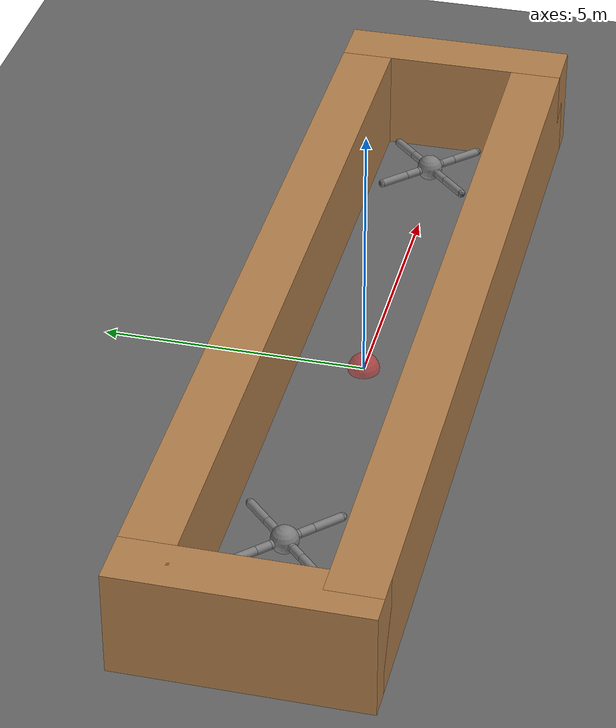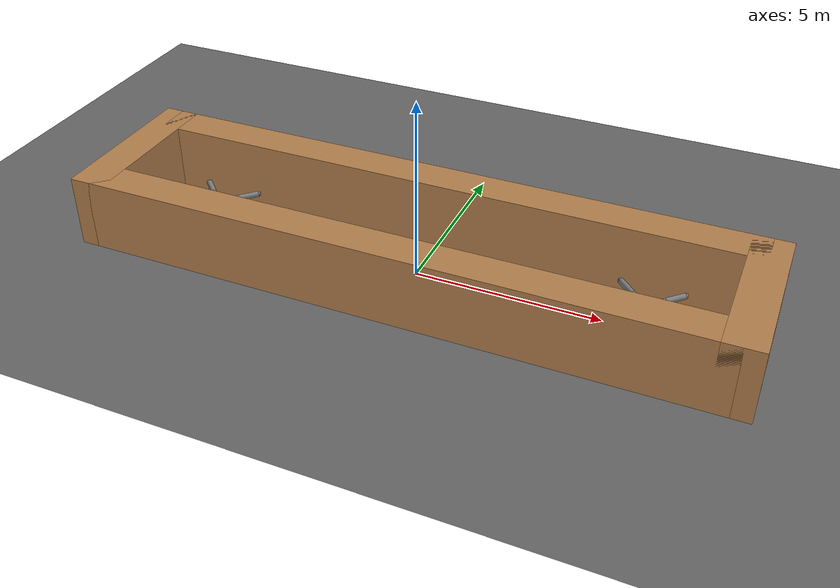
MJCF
<mujoco model="ant_pair_corridor">
  <compiler angle="degree" coordinate="local" inertiafromgeom="true"/>
  <option timestep="0.01" iterations="4" />
  <custom>
    <!-- brax custom params -->
    <!-- init_qpos: ant_a (15) + ant_b (15) + target_a (2) + target_b (2) = 34 -->
    <!-- Ant A starts at left end (-6, 0), Ant B starts at right end (6, 0) -->
    <!-- Target A is at right end (6, 0), Target B is at left end (-6, 0) -->
    <numeric data="-6.0 0.0 0.55 1.0 0.0 0.0 0.0 0.0 1.0 0.0 -1.0 0.0 -1.0 0.0 1.0 6.0 0.0 0.55 1.0 0.0 0.0 0.0 0.0 1.0 0.0 -1.0 0.0 -1.0 0.0 1.0 6.0 0.0 -6.0 0.0" name="init_qpos"/>
    <numeric data="1000" name="constraint_limit_stiffness"/>
    <numeric data="4000" name="constraint_stiffness"/>
    <numeric data="10" name="constraint_ang_damping"/>
    <numeric data="20" name="constraint_vel_damping"/>
    <numeric data="0.5" name="joint_scale_pos"/>
    <numeric data="0.2" name="joint_scale_ang"/>
    <numeric data="0.0" name="ang_damping"/>
    <numeric data="1" name="spring_mass_scale"/>
    <numeric data="1" name="spring_inertia_scale"/>
    <numeric data="15" name="solver_maxls"/>
  </custom>
  <default>
    <joint armature="1" damping="1" limited="true"/>
    <!-- NOTE: default contype=1, conaffinity=1 so ant bodies COLLIDE with each other -->
    <geom contype="1" conaffinity="1" condim="3" density="5.0" friction="1 0.5 0.5"/>
  </default>
  <asset>
    <texture builtin="gradient" height="100" rgb1="1 1 1" rgb2="0 0 0" type="skybox" width="100"/>
    <texture builtin="flat" height="1278" mark="cross" markrgb="1 1 1" name="texgeom" random="0.01" rgb1="0.8 0.6 0.4" rgb2="0.8 0.6 0.4" type="cube" width="127"/>
    <texture builtin="checker" height="100" name="texplane" rgb1="0 0 0" rgb2="0.8 0.8 0.8" type="2d" width="100"/>
    <material name="MatPlane" reflectance="0.5" shininess="1" specular="1" texrepeat="60 60" texture="texplane"/>
    <material name="geom" texture="texgeom" texuniform="true"/>
  </asset>
  <worldbody>
    <light cutoff="100" diffuse="1 1 1" dir="-0 0 -1.3" directional="true" exponent="1" pos="0 0 1.3" specular=".1 .1 .1"/>
    <geom conaffinity="1" condim="3" material="MatPlane" name="floor" pos="0 0 0" size="40 40 40" type="plane"/>

    <!-- Static top-down camera centered on corridor -->
    <camera name="track" mode="fixed" pos="0 0 14" xyaxes="1 0 0 0 1 0"/>

    <!-- ===== Corridor Walls ===== -->
    <!-- Long corridor along X axis: from x=-8 to x=8, width=2.5 (y from -1.25 to 1.25) -->
    <!-- North wall -->
    <geom name="wall_north" type="box" pos="0 1.75 1.0" size="8.5 0.5 1.0"
          contype="1" conaffinity="1" rgba="0.7 0.5 0.3 1.0" material=""/>
    <!-- South wall -->
    <geom name="wall_south" type="box" pos="0 -1.75 1.0" size="8.5 0.5 1.0"
          contype="1" conaffinity="1" rgba="0.7 0.5 0.3 1.0" material=""/>
    <!-- West cap -->
    <geom name="wall_west" type="box" pos="-8.5 0 1.0" size="0.5 2.25 1.0"
          contype="1" conaffinity="1" rgba="0.7 0.5 0.3 1.0" material=""/>
    <!-- East cap -->
    <geom name="wall_east" type="box" pos="8.5 0 1.0" size="0.5 2.25 1.0"
          contype="1" conaffinity="1" rgba="0.7 0.5 0.3 1.0" material=""/>

    <!-- ===== Ant A (starts at left end) ===== -->
    <body name="torso_a" pos="-6 0 0.75">
      <camera name="agent_a" mode="trackcom" pos="0 0 6" xyaxes="1 0 0 0 1 0"/>
      <geom name="a_torso_geom" pos="0 0 0" size="0.25" type="sphere"/>
      <joint armature="0" damping="0" limited="false" margin="0.01" name="a_root" pos="0 0 0" type="free"/>
      <body name="a_front_left_leg" pos="0 0 0">
        <geom fromto="0.0 0.0 0.0 0.2 0.2 0.0" name="a_aux_1_geom" size="0.08" type="capsule"/>
        <body name="a_aux_1" pos="0.2 0.2 0">
          <joint axis="0 0 1" name="a_hip_1" pos="0.0 0.0 0.0" range="-30 30" type="hinge"/>
          <geom fromto="0.0 0.0 0.0 0.2 0.2 0.0" name="a_left_leg_geom" size="0.08" type="capsule"/>
          <body pos="0.2 0.2 0">
            <joint axis="-1 1 0" name="a_ankle_1" pos="0.0 0.0 0.0" range="30 70" type="hinge"/>
            <geom fromto="0.0 0.0 0.0 0.4 0.4 0.0" name="a_left_ankle_geom" size="0.08" type="capsule"/>
            <geom name="a_left_foot_geom" pos="0.4 0.4 0" size="0.08" type="sphere" mass="0"/>
          </body>
        </body>
      </body>
      <body name="a_front_right_leg" pos="0 0 0">
        <geom fromto="0.0 0.0 0.0 -0.2 0.2 0.0" name="a_aux_2_geom" size="0.08" type="capsule"/>
        <body name="a_aux_2" pos="-0.2 0.2 0">
          <joint axis="0 0 1" name="a_hip_2" pos="0.0 0.0 0.0" range="-30 30" type="hinge"/>
          <geom fromto="0.0 0.0 0.0 -0.2 0.2 0.0" name="a_right_leg_geom" size="0.08" type="capsule"/>
          <body pos="-0.2 0.2 0">
            <joint axis="1 1 0" name="a_ankle_2" pos="0.0 0.0 0.0" range="-70 -30" type="hinge"/>
            <geom fromto="0.0 0.0 0.0 -0.4 0.4 0.0" name="a_right_ankle_geom" size="0.08" type="capsule"/>
            <geom name="a_right_foot_geom" pos="-0.4 0.4 0" size="0.08" type="sphere" mass="0"/>
          </body>
        </body>
      </body>
      <body name="a_back_leg" pos="0 0 0">
        <geom fromto="0.0 0.0 0.0 -0.2 -0.2 0.0" name="a_aux_3_geom" size="0.08" type="capsule"/>
        <body name="a_aux_3" pos="-0.2 -0.2 0">
          <joint axis="0 0 1" name="a_hip_3" pos="0.0 0.0 0.0" range="-30 30" type="hinge"/>
          <geom fromto="0.0 0.0 0.0 -0.2 -0.2 0.0" name="a_back_leg_geom" size="0.08" type="capsule"/>
          <body pos="-0.2 -0.2 0">
            <joint axis="-1 1 0" name="a_ankle_3" pos="0.0 0.0 0.0" range="-70 -30" type="hinge"/>
            <geom fromto="0.0 0.0 0.0 -0.4 -0.4 0.0" name="a_third_ankle_geom" size="0.08" type="capsule"/>
            <geom name="a_third_foot_geom" pos="-0.4 -0.4 0" size="0.08" type="sphere" mass="0"/>
          </body>
        </body>
      </body>
      <body name="a_right_back_leg" pos="0 0 0">
        <geom fromto="0.0 0.0 0.0 0.2 -0.2 0.0" name="a_aux_4_geom" size="0.08" type="capsule"/>
        <body name="a_aux_4" pos="0.2 -0.2 0">
          <joint axis="0 0 1" name="a_hip_4" pos="0.0 0.0 0.0" range="-30 30" type="hinge"/>
          <geom fromto="0.0 0.0 0.0 0.2 -0.2 0.0" name="a_rightback_leg_geom" size="0.08" type="capsule"/>
          <body pos="0.2 -0.2 0">
            <joint axis="1 1 0" name="a_ankle_4" pos="0.0 0.0 0.0" range="30 70" type="hinge"/>
            <geom fromto="0.0 0.0 0.0 0.4 -0.4 0.0" name="a_fourth_ankle_geom" size="0.08" type="capsule"/>
            <geom name="a_fourth_foot_geom" pos="0.4 -0.4 0" size="0.08" type="sphere" mass="0"/>
          </body>
        </body>
      </body>
    </body>

    <!-- ===== Ant B (starts at right end) ===== -->
    <body name="torso_b" pos="6 0 0.75">
      <camera name="agent_b" mode="trackcom" pos="0 0 6" xyaxes="1 0 0 0 1 0"/>
      <geom name="b_torso_geom" pos="0 0 0" size="0.25" type="sphere"/>
      <joint armature="0" damping="0" limited="false" margin="0.01" name="b_root" pos="0 0 0" type="free"/>
      <body name="b_front_left_leg" pos="0 0 0">
        <geom fromto="0.0 0.0 0.0 0.2 0.2 0.0" name="b_aux_1_geom" size="0.08" type="capsule"/>
        <body name="b_aux_1" pos="0.2 0.2 0">
          <joint axis="0 0 1" name="b_hip_1" pos="0.0 0.0 0.0" range="-30 30" type="hinge"/>
          <geom fromto="0.0 0.0 0.0 0.2 0.2 0.0" name="b_left_leg_geom" size="0.08" type="capsule"/>
          <body pos="0.2 0.2 0">
            <joint axis="-1 1 0" name="b_ankle_1" pos="0.0 0.0 0.0" range="30 70" type="hinge"/>
            <geom fromto="0.0 0.0 0.0 0.4 0.4 0.0" name="b_left_ankle_geom" size="0.08" type="capsule"/>
            <geom name="b_left_foot_geom" pos="0.4 0.4 0" size="0.08" type="sphere" mass="0"/>
          </body>
        </body>
      </body>
      <body name="b_front_right_leg" pos="0 0 0">
        <geom fromto="0.0 0.0 0.0 -0.2 0.2 0.0" name="b_aux_2_geom" size="0.08" type="capsule"/>
        <body name="b_aux_2" pos="-0.2 0.2 0">
          <joint axis="0 0 1" name="b_hip_2" pos="0.0 0.0 0.0" range="-30 30" type="hinge"/>
          <geom fromto="0.0 0.0 0.0 -0.2 0.2 0.0" name="b_right_leg_geom" size="0.08" type="capsule"/>
          <body pos="-0.2 0.2 0">
            <joint axis="1 1 0" name="b_ankle_2" pos="0.0 0.0 0.0" range="-70 -30" type="hinge"/>
            <geom fromto="0.0 0.0 0.0 -0.4 0.4 0.0" name="b_right_ankle_geom" size="0.08" type="capsule"/>
            <geom name="b_right_foot_geom" pos="-0.4 0.4 0" size="0.08" type="sphere" mass="0"/>
          </body>
        </body>
      </body>
      <body name="b_back_leg" pos="0 0 0">
        <geom fromto="0.0 0.0 0.0 -0.2 -0.2 0.0" name="b_aux_3_geom" size="0.08" type="capsule"/>
        <body name="b_aux_3" pos="-0.2 -0.2 0">
          <joint axis="0 0 1" name="b_hip_3" pos="0.0 0.0 0.0" range="-30 30" type="hinge"/>
          <geom fromto="0.0 0.0 0.0 -0.2 -0.2 0.0" name="b_back_leg_geom" size="0.08" type="capsule"/>
          <body pos="-0.2 -0.2 0">
            <joint axis="-1 1 0" name="b_ankle_3" pos="0.0 0.0 0.0" range="-70 -30" type="hinge"/>
            <geom fromto="0.0 0.0 0.0 -0.4 -0.4 0.0" name="b_third_ankle_geom" size="0.08" type="capsule"/>
            <geom name="b_third_foot_geom" pos="-0.4 -0.4 0" size="0.08" type="sphere" mass="0"/>
          </body>
        </body>
      </body>
      <body name="b_right_back_leg" pos="0 0 0">
        <geom fromto="0.0 0.0 0.0 0.2 -0.2 0.0" name="b_aux_4_geom" size="0.08" type="capsule"/>
        <body name="b_aux_4" pos="0.2 -0.2 0">
          <joint axis="0 0 1" name="b_hip_4" pos="0.0 0.0 0.0" range="-30 30" type="hinge"/>
          <geom fromto="0.0 0.0 0.0 0.2 -0.2 0.0" name="b_rightback_leg_geom" size="0.08" type="capsule"/>
          <body pos="0.2 -0.2 0">
            <joint axis="1 1 0" name="b_ankle_4" pos="0.0 0.0 0.0" range="30 70" type="hinge"/>
            <geom fromto="0.0 0.0 0.0 0.4 -0.4 0.0" name="b_fourth_ankle_geom" size="0.08" type="capsule"/>
            <geom name="b_fourth_foot_geom" pos="0.4 -0.4 0" size="0.08" type="sphere" mass="0"/>
          </body>
        </body>
      </body>
    </body>

    <!-- Target A (where ant A must go = right end) -->
    <body name="target_a" pos="0 0 0.01">
        <joint armature="0" axis="1 0 0" damping="0" limited="true" name="target_a_x" pos="0 0 0" range="-20 20" stiffness="0" type="slide"/>
        <joint armature="0" axis="0 1 0" damping="0" limited="true" name="target_a_y" pos="0 0 0" range="-20 20" stiffness="0" type="slide"/>
        <geom conaffinity="0" contype="0" name="target_a_geom" pos="0 0 0" size=".3" type="sphere" mass="1.0" rgba="1 0.2 0.2 0.5"/>
    </body>
    <!-- Target B (where ant B must go = left end) -->
    <body name="target_b" pos="0 0 0.01">
        <joint armature="0" axis="1 0 0" damping="0" limited="true" name="target_b_x" pos="0 0 0" range="-20 20" stiffness="0" type="slide"/>
        <joint armature="0" axis="0 1 0" damping="0" limited="true" name="target_b_y" pos="0 0 0" range="-20 20" stiffness="0" type="slide"/>
        <geom conaffinity="0" contype="0" name="target_b_geom" pos="0 0 0" size=".3" type="sphere" mass="1.0" rgba="0.2 0.2 1 0.5"/>
    </body>
  </worldbody>
  <actuator>
    <!-- Ant A actuators -->
    <motor ctrllimited="true" ctrlrange="-1.0 1.0" joint="a_hip_4" gear="150"/>
    <motor ctrllimited="true" ctrlrange="-1.0 1.0" joint="a_ankle_4" gear="150"/>
    <motor ctrllimited="true" ctrlrange="-1.0 1.0" joint="a_hip_1" gear="150"/>
    <motor ctrllimited="true" ctrlrange="-1.0 1.0" joint="a_ankle_1" gear="150"/>
    <motor ctrllimited="true" ctrlrange="-1.0 1.0" joint="a_hip_2" gear="150"/>
    <motor ctrllimited="true" ctrlrange="-1.0 1.0" joint="a_ankle_2" gear="150"/>
    <motor ctrllimited="true" ctrlrange="-1.0 1.0" joint="a_hip_3" gear="150"/>
    <motor ctrllimited="true" ctrlrange="-1.0 1.0" joint="a_ankle_3" gear="150"/>
    <!-- Ant B actuators -->
    <motor ctrllimited="true" ctrlrange="-1.0 1.0" joint="b_hip_4" gear="150"/>
    <motor ctrllimited="true" ctrlrange="-1.0 1.0" joint="b_ankle_4" gear="150"/>
    <motor ctrllimited="true" ctrlrange="-1.0 1.0" joint="b_hip_1" gear="150"/>
    <motor ctrllimited="true" ctrlrange="-1.0 1.0" joint="b_ankle_1" gear="150"/>
    <motor ctrllimited="true" ctrlrange="-1.0 1.0" joint="b_hip_2" gear="150"/>
    <motor ctrllimited="true" ctrlrange="-1.0 1.0" joint="b_ankle_2" gear="150"/>
    <motor ctrllimited="true" ctrlrange="-1.0 1.0" joint="b_hip_3" gear="150"/>
    <motor ctrllimited="true" ctrlrange="-1.0 1.0" joint="b_ankle_3" gear="150"/>
  </actuator>
</mujoco>
